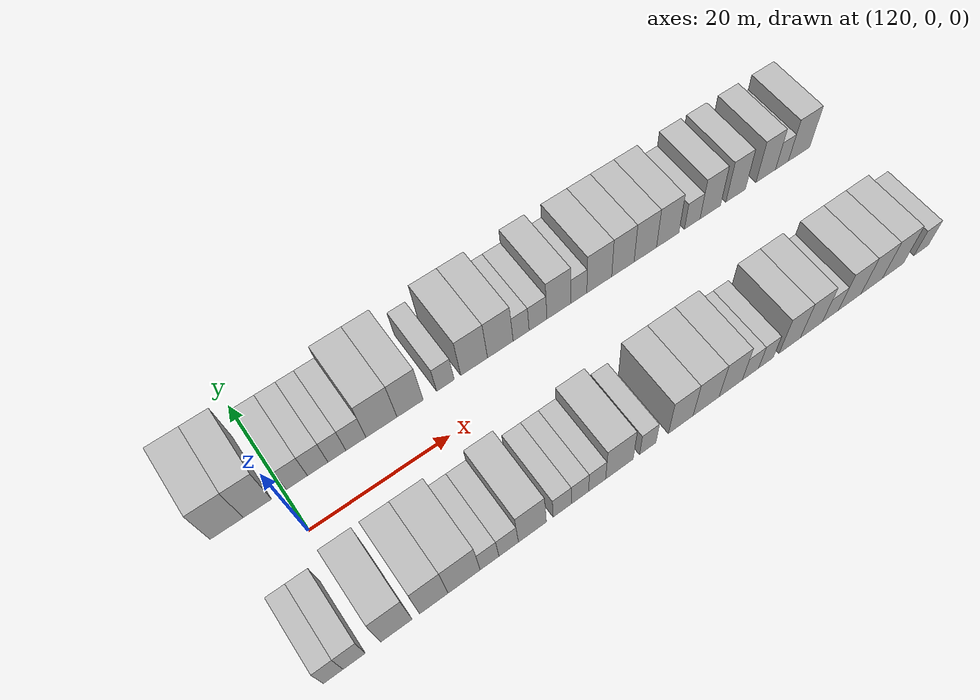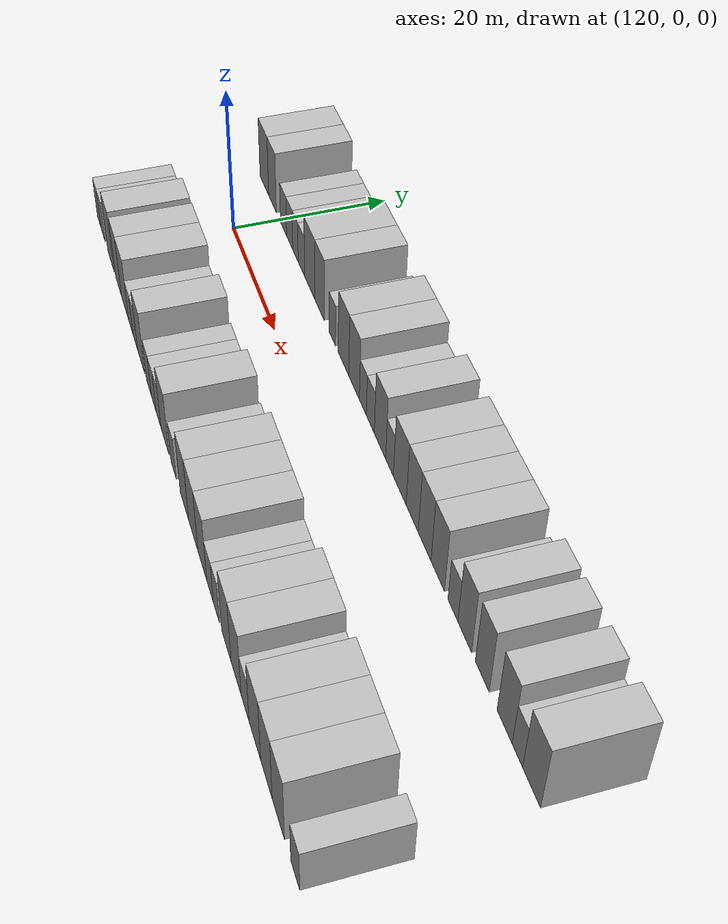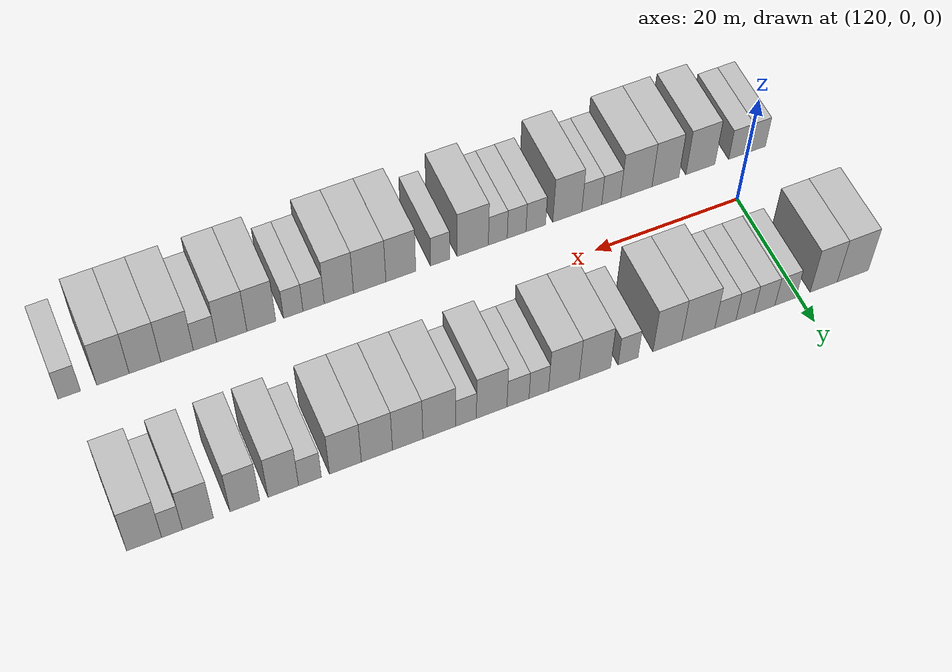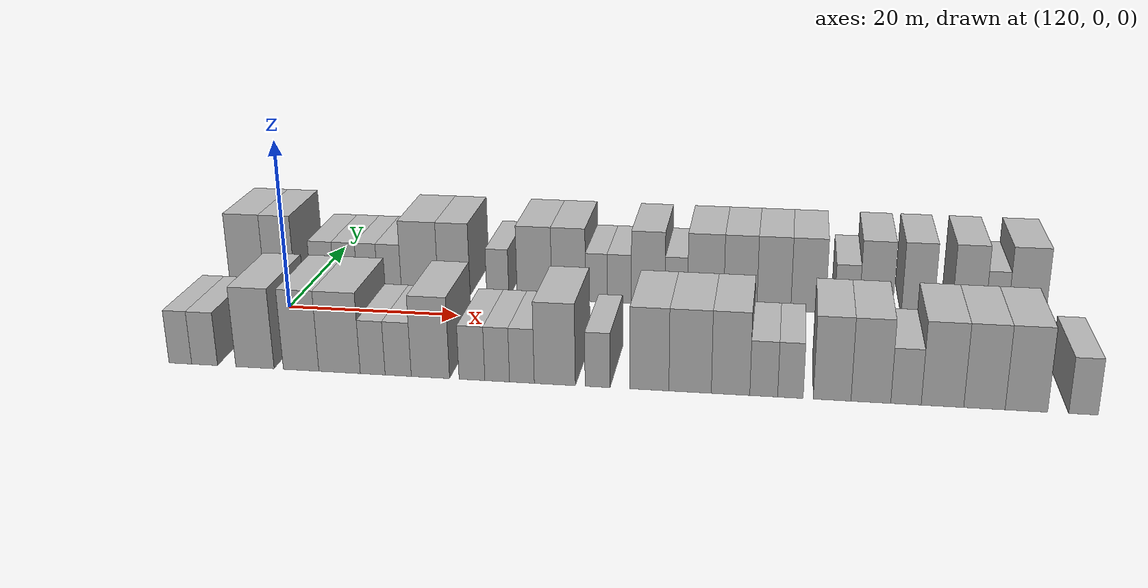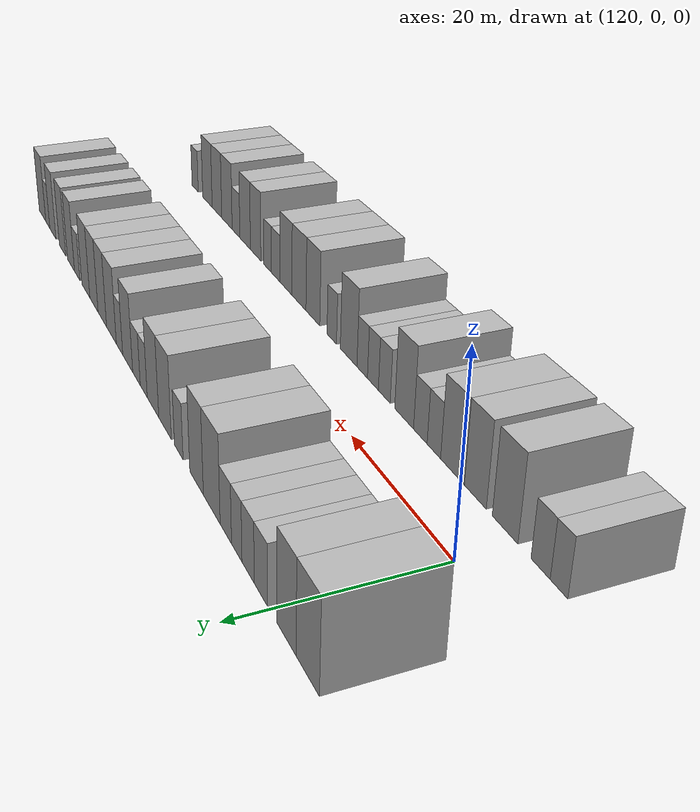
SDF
<sdf version="1.6">
 <world name="default">
  <model name="building_25">
   <static>1</static>
   <pose>112.4384 11.0000 0 0.000000 0.000000 1.570796</pose>
   <link name="link">
    <pose>0 0 4.50 0 0 0</pose>
    <collision name="collision"><geometry><box><size>10.0000 4.3634 9.0000</size></box></geometry></collision>
    <visual name="visual">
     <cast_shadows>0</cast_shadows>
     <geometry><box><size>10.0000 4.3634 9.0000</size></box></geometry>
     <material>
      <script>
       <uri>model://HANNAS_wall/materials/scripts</uri>
       <uri>model://HANNAS_wall/materials/textures</uri>
       <name>vrc/HANNAS_wall</name>
      </script>
     </material>
    </visual>
   </link>
  </model>
  <model name="building_26">
   <static>1</static>
   <pose>116.5243 11.0000 0 0.000000 0.000000 1.570796</pose>
   <link name="link">
    <pose>0 0 4.50 0 0 0</pose>
    <collision name="collision"><geometry><box><size>10.0000 3.8084 9.0000</size></box></geometry></collision>
    <visual name="visual">
     <cast_shadows>0</cast_shadows>
     <geometry><box><size>10.0000 3.8084 9.0000</size></box></geometry>
     <material>
      <script>
       <uri>model://HANNAS_wall/materials/scripts</uri>
       <uri>model://HANNAS_wall/materials/textures</uri>
       <name>vrc/HANNAS_wall</name>
      </script>
     </material>
    </visual>
   </link>
  </model>
  <model name="building_27">
   <static>1</static>
   <pose>121.8879 11.0000 0 0.000000 0.000000 1.570796</pose>
   <link name="link">
    <pose>0 0 3.00 0 0 0</pose>
    <collision name="collision"><geometry><box><size>10.0000 2.9187 6.0000</size></box></geometry></collision>
    <visual name="visual">
     <cast_shadows>0</cast_shadows>
     <geometry><box><size>10.0000 2.9187 6.0000</size></box></geometry>
     <material>
      <script>
       <uri>model://HANNAS_wall/materials/scripts</uri>
       <uri>model://HANNAS_wall/materials/textures</uri>
       <name>vrc/HANNAS_wall</name>
      </script>
     </material>
    </visual>
   </link>
  </model>
  <model name="building_28">
   <static>1</static>
   <pose>124.7764 11.0000 0 0.000000 0.000000 1.570796</pose>
   <link name="link">
    <pose>0 0 3.00 0 0 0</pose>
    <collision name="collision"><geometry><box><size>10.0000 2.8584 6.0000</size></box></geometry></collision>
    <visual name="visual">
     <cast_shadows>0</cast_shadows>
     <geometry><box><size>10.0000 2.8584 6.0000</size></box></geometry>
     <material>
      <script>
       <uri>model://HANNAS_wall/materials/scripts</uri>
       <uri>model://HANNAS_wall/materials/textures</uri>
       <name>vrc/HANNAS_wall</name>
      </script>
     </material>
    </visual>
   </link>
  </model>
  <model name="building_29">
   <static>1</static>
   <pose>127.4666 11.0000 0 0.000000 0.000000 1.570796</pose>
   <link name="link">
    <pose>0 0 3.00 0 0 0</pose>
    <collision name="collision"><geometry><box><size>10.0000 2.5221 6.0000</size></box></geometry></collision>
    <visual name="visual">
     <cast_shadows>0</cast_shadows>
     <geometry><box><size>10.0000 2.5221 6.0000</size></box></geometry>
     <material>
      <script>
       <uri>model://HANNAS_wall/materials/scripts</uri>
       <uri>model://HANNAS_wall/materials/textures</uri>
       <name>vrc/HANNAS_wall</name>
      </script>
     </material>
    </visual>
   </link>
  </model>
  <model name="building_30">
   <static>1</static>
   <pose>130.1689 11.0000 0 0.000000 0.000000 1.570796</pose>
   <link name="link">
    <pose>0 0 3.00 0 0 0</pose>
    <collision name="collision"><geometry><box><size>10.0000 2.8825 6.0000</size></box></geometry></collision>
    <visual name="visual">
     <cast_shadows>0</cast_shadows>
     <geometry><box><size>10.0000 2.8825 6.0000</size></box></geometry>
     <material>
      <script>
       <uri>model://HANNAS_wall/materials/scripts</uri>
       <uri>model://HANNAS_wall/materials/textures</uri>
       <name>vrc/HANNAS_wall</name>
      </script>
     </material>
    </visual>
   </link>
  </model>
  <model name="building_31">
   <static>1</static>
   <pose>133.8577 11.0000 0 0.000000 0.000000 1.570796</pose>
   <link name="link">
    <pose>0 0 4.50 0 0 0</pose>
    <collision name="collision"><geometry><box><size>10.0000 4.4951 9.0000</size></box></geometry></collision>
    <visual name="visual">
     <cast_shadows>0</cast_shadows>
     <geometry><box><size>10.0000 4.4951 9.0000</size></box></geometry>
     <material>
      <script>
       <uri>model://HANNAS_wall/materials/scripts</uri>
       <uri>model://HANNAS_wall/materials/textures</uri>
       <name>vrc/HANNAS_wall</name>
      </script>
     </material>
    </visual>
   </link>
  </model>
  <model name="building_32">
   <static>1</static>
   <pose>138.0443 11.0000 0 0.000000 0.000000 1.570796</pose>
   <link name="link">
    <pose>0 0 4.50 0 0 0</pose>
    <collision name="collision"><geometry><box><size>10.0000 3.8781 9.0000</size></box></geometry></collision>
    <visual name="visual">
     <cast_shadows>0</cast_shadows>
     <geometry><box><size>10.0000 3.8781 9.0000</size></box></geometry>
     <material>
      <script>
       <uri>model://HANNAS_wall/materials/scripts</uri>
       <uri>model://HANNAS_wall/materials/textures</uri>
       <name>vrc/HANNAS_wall</name>
      </script>
     </material>
    </visual>
   </link>
  </model>
  <model name="building_33">
   <static>1</static>
   <pose>143.3178 11.0000 0 0.000000 0.000000 1.570796</pose>
   <link name="link">
    <pose>0 0 3.00 0 0 0</pose>
    <collision name="collision"><geometry><box><size>10.0000 2.6688 6.0000</size></box></geometry></collision>
    <visual name="visual">
     <cast_shadows>0</cast_shadows>
     <geometry><box><size>10.0000 2.6688 6.0000</size></box></geometry>
     <material>
      <script>
       <uri>model://HANNAS_wall/materials/scripts</uri>
       <uri>model://HANNAS_wall/materials/textures</uri>
       <name>vrc/HANNAS_wall</name>
      </script>
     </material>
    </visual>
   </link>
  </model>
  <model name="building_34">
   <static>1</static>
   <pose>147.7226 11.0000 0 0.000000 0.000000 1.570796</pose>
   <link name="link">
    <pose>0 0 4.50 0 0 0</pose>
    <collision name="collision"><geometry><box><size>10.0000 4.1409 9.0000</size></box></geometry></collision>
    <visual name="visual">
     <cast_shadows>0</cast_shadows>
     <geometry><box><size>10.0000 4.1409 9.0000</size></box></geometry>
     <material>
      <script>
       <uri>model://HANNAS_wall/materials/scripts</uri>
       <uri>model://HANNAS_wall/materials/textures</uri>
       <name>vrc/HANNAS_wall</name>
      </script>
     </material>
    </visual>
   </link>
  </model>
  <model name="building_35">
   <static>1</static>
   <pose>151.8063 11.0000 0 0.000000 0.000000 1.570796</pose>
   <link name="link">
    <pose>0 0 4.50 0 0 0</pose>
    <collision name="collision"><geometry><box><size>10.0000 4.0263 9.0000</size></box></geometry></collision>
    <visual name="visual">
     <cast_shadows>0</cast_shadows>
     <geometry><box><size>10.0000 4.0263 9.0000</size></box></geometry>
     <material>
      <script>
       <uri>model://HANNAS_wall/materials/scripts</uri>
       <uri>model://HANNAS_wall/materials/textures</uri>
       <name>vrc/HANNAS_wall</name>
      </script>
     </material>
    </visual>
   </link>
  </model>
  <model name="building_36">
   <static>1</static>
   <pose>155.0954 11.0000 0 0.000000 0.000000 1.570796</pose>
   <link name="link">
    <pose>0 0 3.00 0 0 0</pose>
    <collision name="collision"><geometry><box><size>10.0000 2.5520 6.0000</size></box></geometry></collision>
    <visual name="visual">
     <cast_shadows>0</cast_shadows>
     <geometry><box><size>10.0000 2.5520 6.0000</size></box></geometry>
     <material>
      <script>
       <uri>model://HANNAS_wall/materials/scripts</uri>
       <uri>model://HANNAS_wall/materials/textures</uri>
       <name>vrc/HANNAS_wall</name>
      </script>
     </material>
    </visual>
   </link>
  </model>
  <model name="building_37">
   <static>1</static>
   <pose>157.8028 11.0000 0 0.000000 0.000000 1.570796</pose>
   <link name="link">
    <pose>0 0 3.00 0 0 0</pose>
    <collision name="collision"><geometry><box><size>10.0000 2.8628 6.0000</size></box></geometry></collision>
    <visual name="visual">
     <cast_shadows>0</cast_shadows>
     <geometry><box><size>10.0000 2.8628 6.0000</size></box></geometry>
     <material>
      <script>
       <uri>model://HANNAS_wall/materials/scripts</uri>
       <uri>model://HANNAS_wall/materials/textures</uri>
       <name>vrc/HANNAS_wall</name>
      </script>
     </material>
    </visual>
   </link>
  </model>
  <model name="building_38">
   <static>1</static>
   <pose>161.2052 11.0000 0 0.000000 0.000000 1.570796</pose>
   <link name="link">
    <pose>0 0 4.50 0 0 0</pose>
    <collision name="collision"><geometry><box><size>10.0000 3.9419 9.0000</size></box></geometry></collision>
    <visual name="visual">
     <cast_shadows>0</cast_shadows>
     <geometry><box><size>10.0000 3.9419 9.0000</size></box></geometry>
     <material>
      <script>
       <uri>model://HANNAS_wall/materials/scripts</uri>
       <uri>model://HANNAS_wall/materials/textures</uri>
       <name>vrc/HANNAS_wall</name>
      </script>
     </material>
    </visual>
   </link>
  </model>
  <model name="building_39">
   <static>1</static>
   <pose>164.4893 11.0000 0 0.000000 0.000000 1.570796</pose>
   <link name="link">
    <pose>0 0 3.00 0 0 0</pose>
    <collision name="collision"><geometry><box><size>10.0000 2.6264 6.0000</size></box></geometry></collision>
    <visual name="visual">
     <cast_shadows>0</cast_shadows>
     <geometry><box><size>10.0000 2.6264 6.0000</size></box></geometry>
     <material>
      <script>
       <uri>model://HANNAS_wall/materials/scripts</uri>
       <uri>model://HANNAS_wall/materials/textures</uri>
       <name>vrc/HANNAS_wall</name>
      </script>
     </material>
    </visual>
   </link>
  </model>
  <model name="building_40">
   <static>1</static>
   <pose>167.9004 11.0000 0 0.000000 0.000000 1.570796</pose>
   <link name="link">
    <pose>0 0 4.50 0 0 0</pose>
    <collision name="collision"><geometry><box><size>10.0000 4.1957 9.0000</size></box></geometry></collision>
    <visual name="visual">
     <cast_shadows>0</cast_shadows>
     <geometry><box><size>10.0000 4.1957 9.0000</size></box></geometry>
     <material>
      <script>
       <uri>model://HANNAS_wall/materials/scripts</uri>
       <uri>model://HANNAS_wall/materials/textures</uri>
       <name>vrc/HANNAS_wall</name>
      </script>
     </material>
    </visual>
   </link>
  </model>
  <model name="building_41">
   <static>1</static>
   <pose>171.9142 11.0000 0 0.000000 0.000000 1.570796</pose>
   <link name="link">
    <pose>0 0 4.50 0 0 0</pose>
    <collision name="collision"><geometry><box><size>10.0000 3.8318 9.0000</size></box></geometry></collision>
    <visual name="visual">
     <cast_shadows>0</cast_shadows>
     <geometry><box><size>10.0000 3.8318 9.0000</size></box></geometry>
     <material>
      <script>
       <uri>model://HANNAS_wall/materials/scripts</uri>
       <uri>model://HANNAS_wall/materials/textures</uri>
       <name>vrc/HANNAS_wall</name>
      </script>
     </material>
    </visual>
   </link>
  </model>
  <model name="building_42">
   <static>1</static>
   <pose>175.7803 11.0000 0 0.000000 0.000000 1.570796</pose>
   <link name="link">
    <pose>0 0 4.50 0 0 0</pose>
    <collision name="collision"><geometry><box><size>10.0000 3.9005 9.0000</size></box></geometry></collision>
    <visual name="visual">
     <cast_shadows>0</cast_shadows>
     <geometry><box><size>10.0000 3.9005 9.0000</size></box></geometry>
     <material>
      <script>
       <uri>model://HANNAS_wall/materials/scripts</uri>
       <uri>model://HANNAS_wall/materials/textures</uri>
       <name>vrc/HANNAS_wall</name>
      </script>
     </material>
    </visual>
   </link>
  </model>
  <model name="building_43">
   <static>1</static>
   <pose>179.7141 11.0000 0 0.000000 0.000000 1.570796</pose>
   <link name="link">
    <pose>0 0 4.50 0 0 0</pose>
    <collision name="collision"><geometry><box><size>10.0000 3.9672 9.0000</size></box></geometry></collision>
    <visual name="visual">
     <cast_shadows>0</cast_shadows>
     <geometry><box><size>10.0000 3.9672 9.0000</size></box></geometry>
     <material>
      <script>
       <uri>model://HANNAS_wall/materials/scripts</uri>
       <uri>model://HANNAS_wall/materials/textures</uri>
       <name>vrc/HANNAS_wall</name>
      </script>
     </material>
    </visual>
   </link>
  </model>
  <model name="building_44">
   <static>1</static>
   <pose>184.0987 11.0000 0 0.000000 0.000000 1.570796</pose>
   <link name="link">
    <pose>0 0 3.00 0 0 0</pose>
    <collision name="collision"><geometry><box><size>10.0000 2.8020 6.0000</size></box></geometry></collision>
    <visual name="visual">
     <cast_shadows>0</cast_shadows>
     <geometry><box><size>10.0000 2.8020 6.0000</size></box></geometry>
     <material>
      <script>
       <uri>model://HANNAS_wall/materials/scripts</uri>
       <uri>model://HANNAS_wall/materials/textures</uri>
       <name>vrc/HANNAS_wall</name>
      </script>
     </material>
    </visual>
   </link>
  </model>
  <model name="building_45">
   <static>1</static>
   <pose>187.3740 11.0000 0 0.000000 0.000000 1.570796</pose>
   <link name="link">
    <pose>0 0 4.50 0 0 0</pose>
    <collision name="collision"><geometry><box><size>10.0000 3.7487 9.0000</size></box></geometry></collision>
    <visual name="visual">
     <cast_shadows>0</cast_shadows>
     <geometry><box><size>10.0000 3.7487 9.0000</size></box></geometry>
     <material>
      <script>
       <uri>model://HANNAS_wall/materials/scripts</uri>
       <uri>model://HANNAS_wall/materials/textures</uri>
       <name>vrc/HANNAS_wall</name>
      </script>
     </material>
    </visual>
   </link>
  </model>
  <model name="building_46">
   <static>1</static>
   <pose>192.0590 11.0000 0 0.000000 0.000000 1.570796</pose>
   <link name="link">
    <pose>0 0 4.50 0 0 0</pose>
    <collision name="collision"><geometry><box><size>10.0000 3.6212 9.0000</size></box></geometry></collision>
    <visual name="visual">
     <cast_shadows>0</cast_shadows>
     <geometry><box><size>10.0000 3.6212 9.0000</size></box></geometry>
     <material>
      <script>
       <uri>model://HANNAS_wall/materials/scripts</uri>
       <uri>model://HANNAS_wall/materials/textures</uri>
       <name>vrc/HANNAS_wall</name>
      </script>
     </material>
    </visual>
   </link>
  </model>
  <model name="building_47">
   <static>1</static>
   <pose>197.7250 11.0000 0 0.000000 0.000000 1.570796</pose>
   <link name="link">
    <pose>0 0 4.50 0 0 0</pose>
    <collision name="collision"><geometry><box><size>10.0000 3.7109 9.0000</size></box></geometry></collision>
    <visual name="visual">
     <cast_shadows>0</cast_shadows>
     <geometry><box><size>10.0000 3.7109 9.0000</size></box></geometry>
     <material>
      <script>
       <uri>model://HANNAS_wall/materials/scripts</uri>
       <uri>model://HANNAS_wall/materials/textures</uri>
       <name>vrc/HANNAS_wall</name>
      </script>
     </material>
    </visual>
   </link>
  </model>
  <model name="building_48">
   <static>1</static>
   <pose>200.8191 11.0000 0 0.000000 0.000000 1.570796</pose>
   <link name="link">
    <pose>0 0 3.00 0 0 0</pose>
    <collision name="collision"><geometry><box><size>10.0000 2.4773 6.0000</size></box></geometry></collision>
    <visual name="visual">
     <cast_shadows>0</cast_shadows>
     <geometry><box><size>10.0000 2.4773 6.0000</size></box></geometry>
     <material>
      <script>
       <uri>model://HANNAS_wall/materials/scripts</uri>
       <uri>model://HANNAS_wall/materials/textures</uri>
       <name>vrc/HANNAS_wall</name>
      </script>
     </material>
    </visual>
   </link>
  </model>
  <model name="building_49">
   <static>1</static>
   <pose>204.1340 11.0000 0 0.000000 0.000000 1.570796</pose>
   <link name="link">
    <pose>0 0 4.50 0 0 0</pose>
    <collision name="collision"><geometry><box><size>10.0000 4.1524 9.0000</size></box></geometry></collision>
    <visual name="visual">
     <cast_shadows>0</cast_shadows>
     <geometry><box><size>10.0000 4.1524 9.0000</size></box></geometry>
     <material>
      <script>
       <uri>model://HANNAS_wall/materials/scripts</uri>
       <uri>model://HANNAS_wall/materials/textures</uri>
       <name>vrc/HANNAS_wall</name>
      </script>
     </material>
    </visual>
   </link>
  </model>
  <model name="building_75">
   <static>1</static>
   <pose>114.0113 -11.0000 0 0.000000 0.000000 1.570796</pose>
   <link name="link">
    <pose>0 0 3.00 0 0 0</pose>
    <collision name="collision"><geometry><box><size>10.0000 2.5022 6.0000</size></box></geometry></collision>
    <visual name="visual">
     <cast_shadows>0</cast_shadows>
     <geometry><box><size>10.0000 2.5022 6.0000</size></box></geometry>
     <material>
      <script>
       <uri>model://HANNAS_wall/materials/scripts</uri>
       <uri>model://HANNAS_wall/materials/textures</uri>
       <name>vrc/HANNAS_wall</name>
      </script>
     </material>
    </visual>
   </link>
  </model>
  <model name="building_76">
   <static>1</static>
   <pose>116.6865 -11.0000 0 0.000000 0.000000 1.570796</pose>
   <link name="link">
    <pose>0 0 3.00 0 0 0</pose>
    <collision name="collision"><geometry><box><size>10.0000 2.8482 6.0000</size></box></geometry></collision>
    <visual name="visual">
     <cast_shadows>0</cast_shadows>
     <geometry><box><size>10.0000 2.8482 6.0000</size></box></geometry>
     <material>
      <script>
       <uri>model://HANNAS_wall/materials/scripts</uri>
       <uri>model://HANNAS_wall/materials/textures</uri>
       <name>vrc/HANNAS_wall</name>
      </script>
     </material>
    </visual>
   </link>
  </model>
  <model name="building_77">
   <static>1</static>
   <pose>122.2009 -11.0000 0 0.000000 0.000000 1.570796</pose>
   <link name="link">
    <pose>0 0 4.50 0 0 0</pose>
    <collision name="collision"><geometry><box><size>10.0000 4.1806 9.0000</size></box></geometry></collision>
    <visual name="visual">
     <cast_shadows>0</cast_shadows>
     <geometry><box><size>10.0000 4.1806 9.0000</size></box></geometry>
     <material>
      <script>
       <uri>model://HANNAS_wall/materials/scripts</uri>
       <uri>model://HANNAS_wall/materials/textures</uri>
       <name>vrc/HANNAS_wall</name>
      </script>
     </material>
    </visual>
   </link>
  </model>
  <model name="building_78">
   <static>1</static>
   <pose>127.2117 -11.0000 0 0.000000 0.000000 1.570796</pose>
   <link name="link">
    <pose>0 0 4.50 0 0 0</pose>
    <collision name="collision"><geometry><box><size>10.0000 3.8410 9.0000</size></box></geometry></collision>
    <visual name="visual">
     <cast_shadows>0</cast_shadows>
     <geometry><box><size>10.0000 3.8410 9.0000</size></box></geometry>
     <material>
      <script>
       <uri>model://HANNAS_wall/materials/scripts</uri>
       <uri>model://HANNAS_wall/materials/textures</uri>
       <name>vrc/HANNAS_wall</name>
      </script>
     </material>
    </visual>
   </link>
  </model>
  <model name="building_79">
   <static>1</static>
   <pose>131.3590 -11.0000 0 0.000000 0.000000 1.570796</pose>
   <link name="link">
    <pose>0 0 4.50 0 0 0</pose>
    <collision name="collision"><geometry><box><size>10.0000 4.4536 9.0000</size></box></geometry></collision>
    <visual name="visual">
     <cast_shadows>0</cast_shadows>
     <geometry><box><size>10.0000 4.4536 9.0000</size></box></geometry>
     <material>
      <script>
       <uri>model://HANNAS_wall/materials/scripts</uri>
       <uri>model://HANNAS_wall/materials/textures</uri>
       <name>vrc/HANNAS_wall</name>
      </script>
     </material>
    </visual>
   </link>
  </model>
  <model name="building_80">
   <static>1</static>
   <pose>134.9126 -11.0000 0 0.000000 0.000000 1.570796</pose>
   <link name="link">
    <pose>0 0 3.00 0 0 0</pose>
    <collision name="collision"><geometry><box><size>10.0000 2.6535 6.0000</size></box></geometry></collision>
    <visual name="visual">
     <cast_shadows>0</cast_shadows>
     <geometry><box><size>10.0000 2.6535 6.0000</size></box></geometry>
     <material>
      <script>
       <uri>model://HANNAS_wall/materials/scripts</uri>
       <uri>model://HANNAS_wall/materials/textures</uri>
       <name>vrc/HANNAS_wall</name>
      </script>
     </material>
    </visual>
   </link>
  </model>
  <model name="building_81">
   <static>1</static>
   <pose>137.6286 -11.0000 0 0.000000 0.000000 1.570796</pose>
   <link name="link">
    <pose>0 0 3.00 0 0 0</pose>
    <collision name="collision"><geometry><box><size>10.0000 2.7786 6.0000</size></box></geometry></collision>
    <visual name="visual">
     <cast_shadows>0</cast_shadows>
     <geometry><box><size>10.0000 2.7786 6.0000</size></box></geometry>
     <material>
      <script>
       <uri>model://HANNAS_wall/materials/scripts</uri>
       <uri>model://HANNAS_wall/materials/textures</uri>
       <name>vrc/HANNAS_wall</name>
      </script>
     </material>
    </visual>
   </link>
  </model>
  <model name="building_82">
   <static>1</static>
   <pose>141.0421 -11.0000 0 0.000000 0.000000 1.570796</pose>
   <link name="link">
    <pose>0 0 4.50 0 0 0</pose>
    <collision name="collision"><geometry><box><size>10.0000 4.0484 9.0000</size></box></geometry></collision>
    <visual name="visual">
     <cast_shadows>0</cast_shadows>
     <geometry><box><size>10.0000 4.0484 9.0000</size></box></geometry>
     <material>
      <script>
       <uri>model://HANNAS_wall/materials/scripts</uri>
       <uri>model://HANNAS_wall/materials/textures</uri>
       <name>vrc/HANNAS_wall</name>
      </script>
     </material>
    </visual>
   </link>
  </model>
  <model name="building_83">
   <static>1</static>
   <pose>145.4181 -11.0000 0 0.000000 0.000000 1.570796</pose>
   <link name="link">
    <pose>0 0 3.00 0 0 0</pose>
    <collision name="collision"><geometry><box><size>10.0000 2.7036 6.0000</size></box></geometry></collision>
    <visual name="visual">
     <cast_shadows>0</cast_shadows>
     <geometry><box><size>10.0000 2.7036 6.0000</size></box></geometry>
     <material>
      <script>
       <uri>model://HANNAS_wall/materials/scripts</uri>
       <uri>model://HANNAS_wall/materials/textures</uri>
       <name>vrc/HANNAS_wall</name>
      </script>
     </material>
    </visual>
   </link>
  </model>
  <model name="building_84">
   <static>1</static>
   <pose>148.0604 -11.0000 0 0.000000 0.000000 1.570796</pose>
   <link name="link">
    <pose>0 0 3.00 0 0 0</pose>
    <collision name="collision"><geometry><box><size>10.0000 2.5810 6.0000</size></box></geometry></collision>
    <visual name="visual">
     <cast_shadows>0</cast_shadows>
     <geometry><box><size>10.0000 2.5810 6.0000</size></box></geometry>
     <material>
      <script>
       <uri>model://HANNAS_wall/materials/scripts</uri>
       <uri>model://HANNAS_wall/materials/textures</uri>
       <name>vrc/HANNAS_wall</name>
      </script>
     </material>
    </visual>
   </link>
  </model>
  <model name="building_85">
   <static>1</static>
   <pose>150.6372 -11.0000 0 0.000000 0.000000 1.570796</pose>
   <link name="link">
    <pose>0 0 3.00 0 0 0</pose>
    <collision name="collision"><geometry><box><size>10.0000 2.5727 6.0000</size></box></geometry></collision>
    <visual name="visual">
     <cast_shadows>0</cast_shadows>
     <geometry><box><size>10.0000 2.5727 6.0000</size></box></geometry>
     <material>
      <script>
       <uri>model://HANNAS_wall/materials/scripts</uri>
       <uri>model://HANNAS_wall/materials/textures</uri>
       <name>vrc/HANNAS_wall</name>
      </script>
     </material>
    </visual>
   </link>
  </model>
  <model name="building_86">
   <static>1</static>
   <pose>154.0472 -11.0000 0 0.000000 0.000000 1.570796</pose>
   <link name="link">
    <pose>0 0 4.50 0 0 0</pose>
    <collision name="collision"><geometry><box><size>10.0000 4.2473 9.0000</size></box></geometry></collision>
    <visual name="visual">
     <cast_shadows>0</cast_shadows>
     <geometry><box><size>10.0000 4.2473 9.0000</size></box></geometry>
     <material>
      <script>
       <uri>model://HANNAS_wall/materials/scripts</uri>
       <uri>model://HANNAS_wall/materials/textures</uri>
       <name>vrc/HANNAS_wall</name>
      </script>
     </material>
    </visual>
   </link>
  </model>
  <model name="building_87">
   <static>1</static>
   <pose>158.4553 -11.0000 0 0.000000 0.000000 1.570796</pose>
   <link name="link">
    <pose>0 0 3.00 0 0 0</pose>
    <collision name="collision"><geometry><box><size>10.0000 2.5688 6.0000</size></box></geometry></collision>
    <visual name="visual">
     <cast_shadows>0</cast_shadows>
     <geometry><box><size>10.0000 2.5688 6.0000</size></box></geometry>
     <material>
      <script>
       <uri>model://HANNAS_wall/materials/scripts</uri>
       <uri>model://HANNAS_wall/materials/textures</uri>
       <name>vrc/HANNAS_wall</name>
      </script>
     </material>
    </visual>
   </link>
  </model>
  <model name="building_88">
   <static>1</static>
   <pose>163.7312 -11.0000 0 0.000000 0.000000 1.570796</pose>
   <link name="link">
    <pose>0 0 4.50 0 0 0</pose>
    <collision name="collision"><geometry><box><size>10.0000 3.9831 9.0000</size></box></geometry></collision>
    <visual name="visual">
     <cast_shadows>0</cast_shadows>
     <geometry><box><size>10.0000 3.9831 9.0000</size></box></geometry>
     <material>
      <script>
       <uri>model://HANNAS_wall/materials/scripts</uri>
       <uri>model://HANNAS_wall/materials/textures</uri>
       <name>vrc/HANNAS_wall</name>
      </script>
     </material>
    </visual>
   </link>
  </model>
  <model name="building_89">
   <static>1</static>
   <pose>167.8643 -11.0000 0 0.000000 0.000000 1.570796</pose>
   <link name="link">
    <pose>0 0 4.50 0 0 0</pose>
    <collision name="collision"><geometry><box><size>10.0000 4.2829 9.0000</size></box></geometry></collision>
    <visual name="visual">
     <cast_shadows>0</cast_shadows>
     <geometry><box><size>10.0000 4.2829 9.0000</size></box></geometry>
     <material>
      <script>
       <uri>model://HANNAS_wall/materials/scripts</uri>
       <uri>model://HANNAS_wall/materials/textures</uri>
       <name>vrc/HANNAS_wall</name>
      </script>
     </material>
    </visual>
   </link>
  </model>
  <model name="building_90">
   <static>1</static>
   <pose>171.9329 -11.0000 0 0.000000 0.000000 1.570796</pose>
   <link name="link">
    <pose>0 0 4.50 0 0 0</pose>
    <collision name="collision"><geometry><box><size>10.0000 3.8543 9.0000</size></box></geometry></collision>
    <visual name="visual">
     <cast_shadows>0</cast_shadows>
     <geometry><box><size>10.0000 3.8543 9.0000</size></box></geometry>
     <material>
      <script>
       <uri>model://HANNAS_wall/materials/scripts</uri>
       <uri>model://HANNAS_wall/materials/textures</uri>
       <name>vrc/HANNAS_wall</name>
      </script>
     </material>
    </visual>
   </link>
  </model>
  <model name="building_91">
   <static>1</static>
   <pose>175.2471 -11.0000 0 0.000000 0.000000 1.570796</pose>
   <link name="link">
    <pose>0 0 3.00 0 0 0</pose>
    <collision name="collision"><geometry><box><size>10.0000 2.7742 6.0000</size></box></geometry></collision>
    <visual name="visual">
     <cast_shadows>0</cast_shadows>
     <geometry><box><size>10.0000 2.7742 6.0000</size></box></geometry>
     <material>
      <script>
       <uri>model://HANNAS_wall/materials/scripts</uri>
       <uri>model://HANNAS_wall/materials/textures</uri>
       <name>vrc/HANNAS_wall</name>
      </script>
     </material>
    </visual>
   </link>
  </model>
  <model name="building_92">
   <static>1</static>
   <pose>177.8988 -11.0000 0 0.000000 0.000000 1.570796</pose>
   <link name="link">
    <pose>0 0 3.00 0 0 0</pose>
    <collision name="collision"><geometry><box><size>10.0000 2.5292 6.0000</size></box></geometry></collision>
    <visual name="visual">
     <cast_shadows>0</cast_shadows>
     <geometry><box><size>10.0000 2.5292 6.0000</size></box></geometry>
     <material>
      <script>
       <uri>model://HANNAS_wall/materials/scripts</uri>
       <uri>model://HANNAS_wall/materials/textures</uri>
       <name>vrc/HANNAS_wall</name>
      </script>
     </material>
    </visual>
   </link>
  </model>
  <model name="building_93">
   <static>1</static>
   <pose>182.0212 -11.0000 0 0.000000 0.000000 1.570796</pose>
   <link name="link">
    <pose>0 0 4.50 0 0 0</pose>
    <collision name="collision"><geometry><box><size>10.0000 3.7155 9.0000</size></box></geometry></collision>
    <visual name="visual">
     <cast_shadows>0</cast_shadows>
     <geometry><box><size>10.0000 3.7155 9.0000</size></box></geometry>
     <material>
      <script>
       <uri>model://HANNAS_wall/materials/scripts</uri>
       <uri>model://HANNAS_wall/materials/textures</uri>
       <name>vrc/HANNAS_wall</name>
      </script>
     </material>
    </visual>
   </link>
  </model>
  <model name="building_94">
   <static>1</static>
   <pose>185.8239 -11.0000 0 0.000000 0.000000 1.570796</pose>
   <link name="link">
    <pose>0 0 4.50 0 0 0</pose>
    <collision name="collision"><geometry><box><size>10.0000 3.8900 9.0000</size></box></geometry></collision>
    <visual name="visual">
     <cast_shadows>0</cast_shadows>
     <geometry><box><size>10.0000 3.8900 9.0000</size></box></geometry>
     <material>
      <script>
       <uri>model://HANNAS_wall/materials/scripts</uri>
       <uri>model://HANNAS_wall/materials/textures</uri>
       <name>vrc/HANNAS_wall</name>
      </script>
     </material>
    </visual>
   </link>
  </model>
  <model name="building_95">
   <static>1</static>
   <pose>189.2479 -11.0000 0 0.000000 0.000000 1.570796</pose>
   <link name="link">
    <pose>0 0 3.00 0 0 0</pose>
    <collision name="collision"><geometry><box><size>10.0000 2.9580 6.0000</size></box></geometry></collision>
    <visual name="visual">
     <cast_shadows>0</cast_shadows>
     <geometry><box><size>10.0000 2.9580 6.0000</size></box></geometry>
     <material>
      <script>
       <uri>model://HANNAS_wall/materials/scripts</uri>
       <uri>model://HANNAS_wall/materials/textures</uri>
       <name>vrc/HANNAS_wall</name>
      </script>
     </material>
    </visual>
   </link>
  </model>
  <model name="building_96">
   <static>1</static>
   <pose>192.7828 -11.0000 0 0.000000 0.000000 1.570796</pose>
   <link name="link">
    <pose>0 0 4.50 0 0 0</pose>
    <collision name="collision"><geometry><box><size>10.0000 4.1117 9.0000</size></box></geometry></collision>
    <visual name="visual">
     <cast_shadows>0</cast_shadows>
     <geometry><box><size>10.0000 4.1117 9.0000</size></box></geometry>
     <material>
      <script>
       <uri>model://HANNAS_wall/materials/scripts</uri>
       <uri>model://HANNAS_wall/materials/textures</uri>
       <name>vrc/HANNAS_wall</name>
      </script>
     </material>
    </visual>
   </link>
  </model>
  <model name="building_97">
   <static>1</static>
   <pose>196.8235 -11.0000 0 0.000000 0.000000 1.570796</pose>
   <link name="link">
    <pose>0 0 4.50 0 0 0</pose>
    <collision name="collision"><geometry><box><size>10.0000 3.9696 9.0000</size></box></geometry></collision>
    <visual name="visual">
     <cast_shadows>0</cast_shadows>
     <geometry><box><size>10.0000 3.9696 9.0000</size></box></geometry>
     <material>
      <script>
       <uri>model://HANNAS_wall/materials/scripts</uri>
       <uri>model://HANNAS_wall/materials/textures</uri>
       <name>vrc/HANNAS_wall</name>
      </script>
     </material>
    </visual>
   </link>
  </model>
  <model name="building_98">
   <static>1</static>
   <pose>200.8354 -11.0000 0 0.000000 0.000000 1.570796</pose>
   <link name="link">
    <pose>0 0 4.50 0 0 0</pose>
    <collision name="collision"><geometry><box><size>10.0000 4.0544 9.0000</size></box></geometry></collision>
    <visual name="visual">
     <cast_shadows>0</cast_shadows>
     <geometry><box><size>10.0000 4.0544 9.0000</size></box></geometry>
     <material>
      <script>
       <uri>model://HANNAS_wall/materials/scripts</uri>
       <uri>model://HANNAS_wall/materials/textures</uri>
       <name>vrc/HANNAS_wall</name>
      </script>
     </material>
    </visual>
   </link>
  </model>
  <model name="building_99">
   <static>1</static>
   <pose>206.2517 -11.0000 0 0.000000 0.000000 1.570796</pose>
   <link name="link">
    <pose>0 0 3.00 0 0 0</pose>
    <collision name="collision"><geometry><box><size>10.0000 2.7782 6.0000</size></box></geometry></collision>
    <visual name="visual">
     <cast_shadows>0</cast_shadows>
     <geometry><box><size>10.0000 2.7782 6.0000</size></box></geometry>
     <material>
      <script>
       <uri>model://HANNAS_wall/materials/scripts</uri>
       <uri>model://HANNAS_wall/materials/textures</uri>
       <name>vrc/HANNAS_wall</name>
      </script>
     </material>
    </visual>
   </link>
  </model>
 </world>
</sdf>
